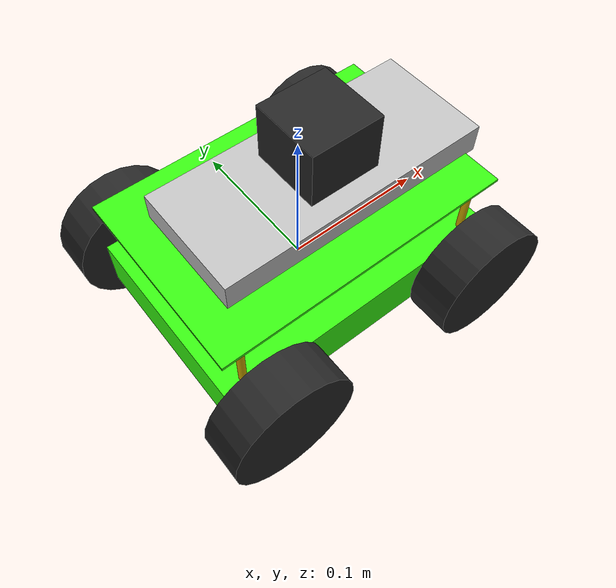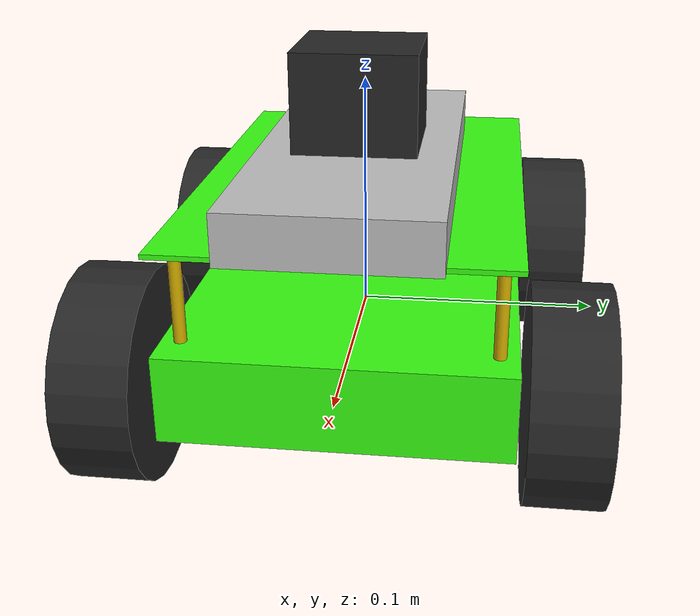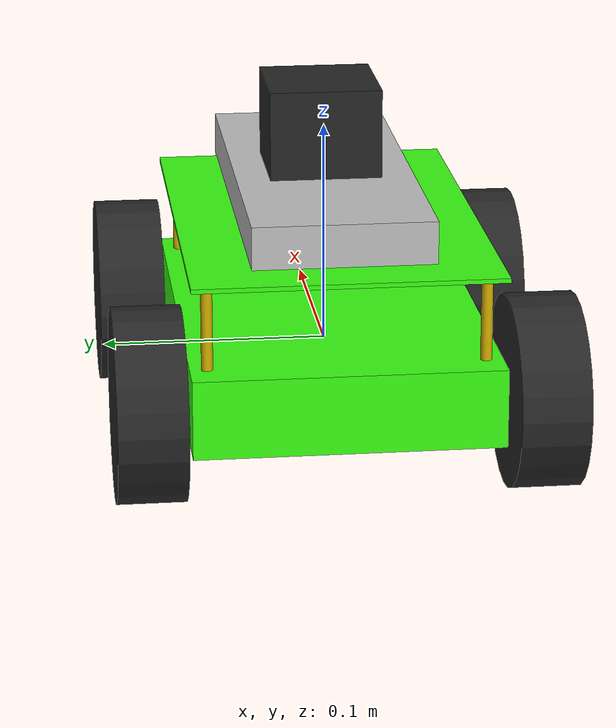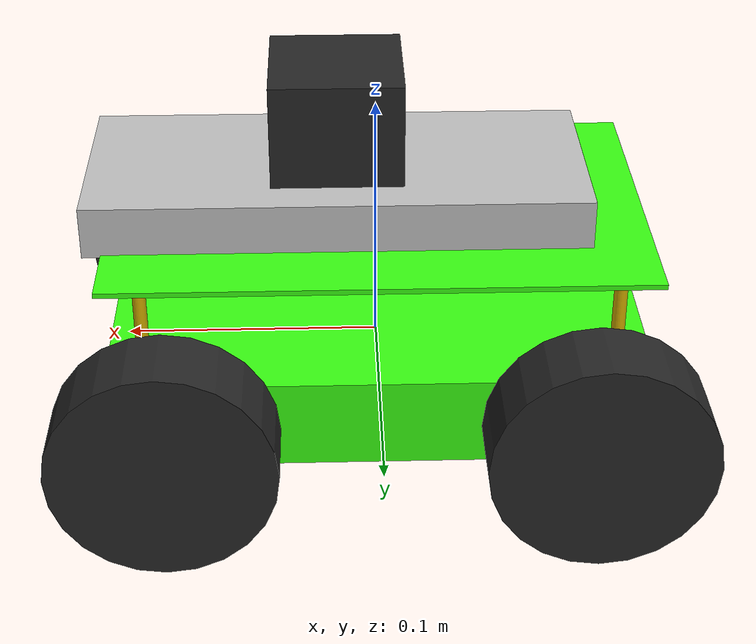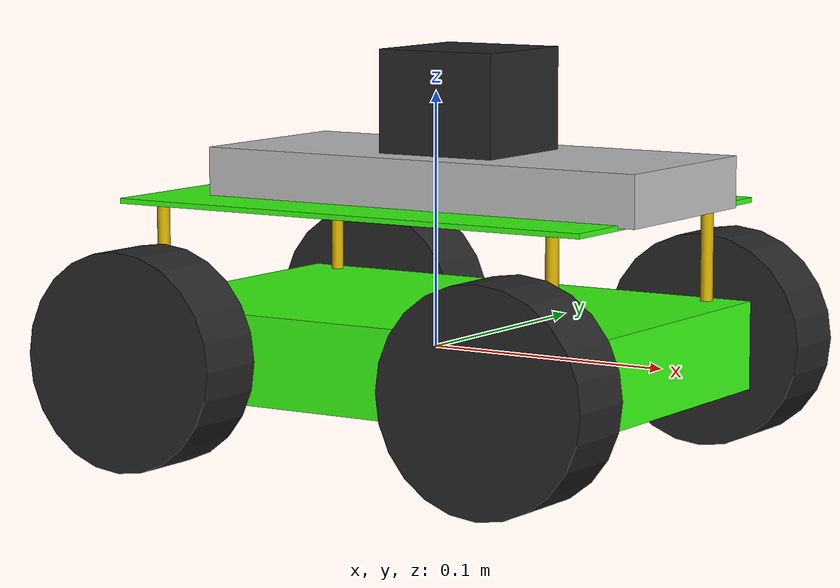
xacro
<?xml version="1.0"?>
<robot name="hercules" xmlns:xacro="http://www.ros.org/wiki/xacro">

  <xacro:property name="chassis_length" value="0.206" />
  <xacro:property name="chassis_width" value="0.135" />
  <xacro:property name="chassis_height" value="0.035" />

  <xacro:property name="wheel_radius" value="0.0425" />
  <xacro:property name="wheel_width" value="0.03" />

  <xacro:property name="wheelbase" value="0.16" />
  <xacro:property name="track" value="0.17" />
  <xacro:property name="wheel_vertical_offset" value="0.0" />

  <xacro:property name="PI" value="3.14159265359" />

 <material name="black"><color rgba="0.15 0.15 0.15 1" /></material>

  <link name="base_link"></link>
  <joint name="base_link_joint" type="fixed">
    <origin xyz="0 0 0" rpy="0 0 0" />
    <parent link="base_link"/>
    <child link="chassis_link" />
  </joint>

   <link name="chassis_link">
    <visual>
      <geometry>
        <box size="${chassis_length} ${chassis_width} ${chassis_height}"/>
      </geometry>
      <material name="green">
        <color rgba="0.22 1.0 0.07 1"/>
      </material>
    </visual>
     <collision>
      <origin xyz="0 0 ${chassis_height/2}"/>
      <geometry>
        <box size="${chassis_length} ${chassis_width} ${chassis_height}"/>
      </geometry>
    </collision>
    <inertial>
      <!-- Center of mass -->
      <origin xyz="0.012  0.002 0.067" rpy="0 0 0"/>
      <mass value="1.5"/>
      <!-- Moments of inertia: ( chassis without wheels ) -->
      <inertia
        ixx="0.3136" ixy="-0.0008" ixz="0.0164"
        iyy="0.3922" iyz="-0.0009"
        izz="0.4485"/>
</inertial>
  </link>

  <link name="top_mount">
    <visual>
      <geometry>
        <box size="${chassis_length} ${chassis_width} 0.002"/>
      </geometry>
      <material name="green">
        <color rgba="0.22 1.0 0.07 1"/>
      </material>
    </visual>
  </link>

  <joint name="top_mount_joint" type="fixed">
    <axis xyz="0 1 0" />
    <origin xyz="0 0 ${chassis_height/2 + 0.04}" rpy="0 0 0"/>
    <parent link="chassis_link"/>

    <child link="top_mount"/>
  </joint>

  <link name="battery">
    <visual>
      <geometry>
        <box size="0.19 0.08 0.02"/>
      </geometry>
      <material name="silver">
        <color rgba="0.75 0.75 0.75 1"/>
      </material>
    </visual>
  </link>

  <joint name="battery_joint" type="fixed">
    <axis xyz="0 1 0" />
    <origin xyz="0.015 0 0.01" rpy="0 0 0"/>
    <parent link="top_mount"/>
    <child link="battery"/>
  </joint>

   <link name="laser">
    <collision>
      <origin xyz="0 0 0" rpy="0 0 0"/>
      <geometry>
        <box size="0.05 0.05 0.05"/>
      </geometry>
    </collision>
    <visual>
      <origin xyz="0 0 0" rpy="0 0 0"/>
      <geometry>
        <box size="0.05 0.05 0.05"/>
      </geometry>
      <material name="black"><color rgba="0.15 0.15 0.15 1" /></material>
    </visual>
    <inertial>
      <mass value="1e-5" />
      <origin xyz="0 0 0" rpy="0 0 0"/>
      <inertia ixx="1e-6" ixy="0" ixz="0" iyy="1e-6" iyz="0" izz="1e-6" />
    </inertial>
  </link>

  <joint name="laser_joint" type="fixed">
    <axis xyz="0 1 0" />
    <origin xyz="0 0 0.025" rpy="0 0 0"/>
    <parent link="battery"/>
    <child link="laser"/>
  </joint>

<xacro:macro name="wheel" params="prefix *joint_pose">

    <link name="${prefix}_wheel_link">
      <visual>
        <origin xyz="0 0 0" rpy="${PI/2} 0 0"/>
        <geometry>
          <cylinder radius="${wheel_radius}" length="${wheel_width}"/>
        </geometry>
        <material name="black" />
      </visual>
      <collision>
        <origin xyz="0 0 0" rpy="${PI/2} 0 0"/>
        <geometry>
          <cylinder radius="${wheel_radius}" length="${wheel_width}"/>
        </geometry>
      </collision>
      <inertial>
        <origin xyz="0 0 0" rpy="0 0 0"/>
        <mass value="0.05"/>
        <inertia
          ixx="2.6326e-5" ixy="0" ixz="0"
          iyy="4.5156e-5" iyz="0"
          izz="2.6326e-5"/>
      </inertial>
    </link>

    <gazebo reference="${prefix}_wheel_link">
      <material>Gazebo/DarkGrey</material>
    </gazebo>

    <joint name="${prefix}_wheel" type="continuous">
      <parent link="chassis_link"/>
      <child link="${prefix}_wheel_link" />
      <xacro:insert_block name="joint_pose" />
      <axis xyz="0 1 0" />
    </joint>

    <transmission name="${prefix}_wheel_trans">
      <type>transmission_interface/SimpleTransmission</type>
      <joint name="${prefix}_wheel">
        <hardwareInterface>hardware_interface/VelocityJointInterface</hardwareInterface>
      </joint>
      <actuator name="${prefix}_actuator">
        <mechanicalReduction>1</mechanicalReduction>
      </actuator>
    </transmission>
  </xacro:macro>

  <xacro:wheel prefix="front_left">
    <origin xyz="${wheelbase/2} ${track/2} ${wheel_vertical_offset}" rpy="0 0 0" />
  </xacro:wheel>
  <xacro:wheel prefix="front_right">
    <origin xyz="${wheelbase/2} ${-track/2} ${wheel_vertical_offset}" rpy="0 0 0" />
  </xacro:wheel>
  <xacro:wheel prefix="back_left">
    <origin xyz="${-wheelbase/2} ${track/2} ${wheel_vertical_offset}" rpy="0 0 0" />
  </xacro:wheel>
  <xacro:wheel prefix="back_right">
    <origin xyz="${-wheelbase/2} ${-track/2} ${wheel_vertical_offset}" rpy="0 0 0" />
  </xacro:wheel>

  <xacro:macro name="offset" params="prefix *offset_pose">
    <link name="${prefix}_offset">
      <visual>
        <origin xyz="0 0 0" rpy="0 0 0"/>
        <geometry>
          <cylinder radius="0.0025" length="0.043"/>
        </geometry>
        <material name="gold">
           <color rgba="0.83 0.68 0.0 1"/>
        </material>
      </visual>
    </link>

    <joint name="${prefix}_offset_joint" type="fixed">
      <parent link="chassis_link"/>
      <child link="${prefix}_offset" />
      <xacro:insert_block name="offset_pose" />
      <axis xyz="0 1 0" />
    </joint>
  </xacro:macro>

  <xacro:offset prefix="front_left">
    <origin xyz="${0.175/2} ${0.12/2} 0.035" rpy="0 0 0" />
  </xacro:offset>
  <xacro:offset prefix="front_right">
    <origin xyz="${0.175/2} ${-0.12/2} 0.035" rpy="0 0 0" />
  </xacro:offset>
  <xacro:offset prefix="back_left">
    <origin xyz="${-0.175/2} ${0.12/2} 0.035" rpy="0 0 0" />
  </xacro:offset>
  <xacro:offset prefix="back_right">
    <origin xyz="${-0.175/2} ${-0.12/2} 0.035" rpy="0 0 0" />
  </xacro:offset>

  <!-- Bring in simulation data for Gazebo. -->
  <xacro:include filename="$(find hercules_description)/urdf/hercules.gazebo" />

</robot>
